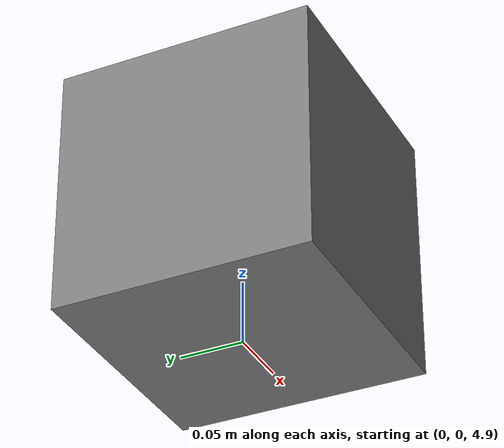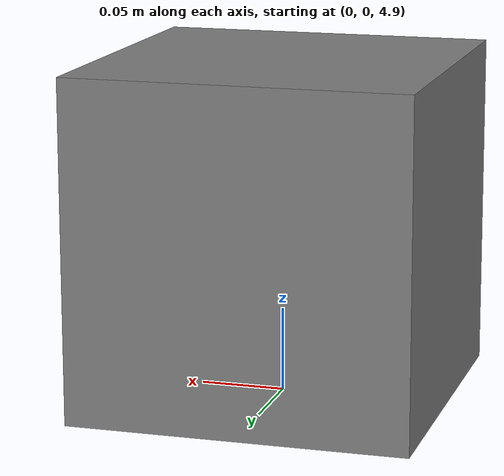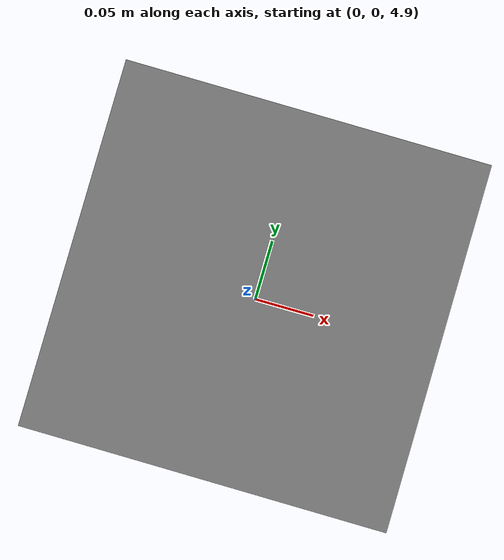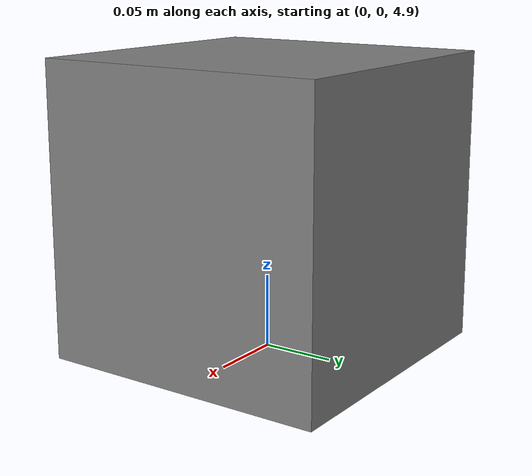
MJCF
<mujoco model="free-body">
  <option gravity="0 0 -9.81" timestep="0.001"/>
  <compiler angle="radian"/>
  <worldbody>
    <body name="box" pos="0 0 5">
      <freejoint name="float"/>
      <geom type="box" size="0.1 0.1 0.1" mass="1.0" contype="0" conaffinity="0"/>
      <site name="center" pos="0 0 0"/>
    </body>
  </worldbody>
  <sensor>
    <framelinvel name="linvel" objtype="site" objname="center"/>
    <framelinacc name="linacc" objtype="site" objname="center"/>
  </sensor>
</mujoco>
